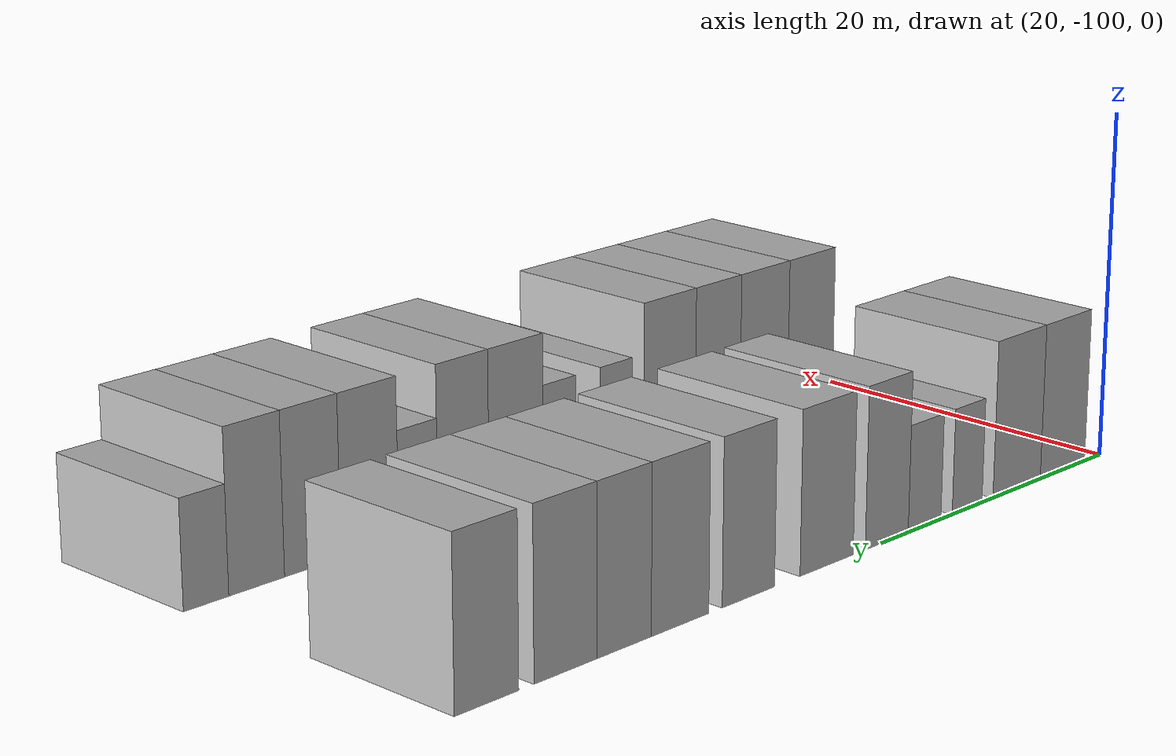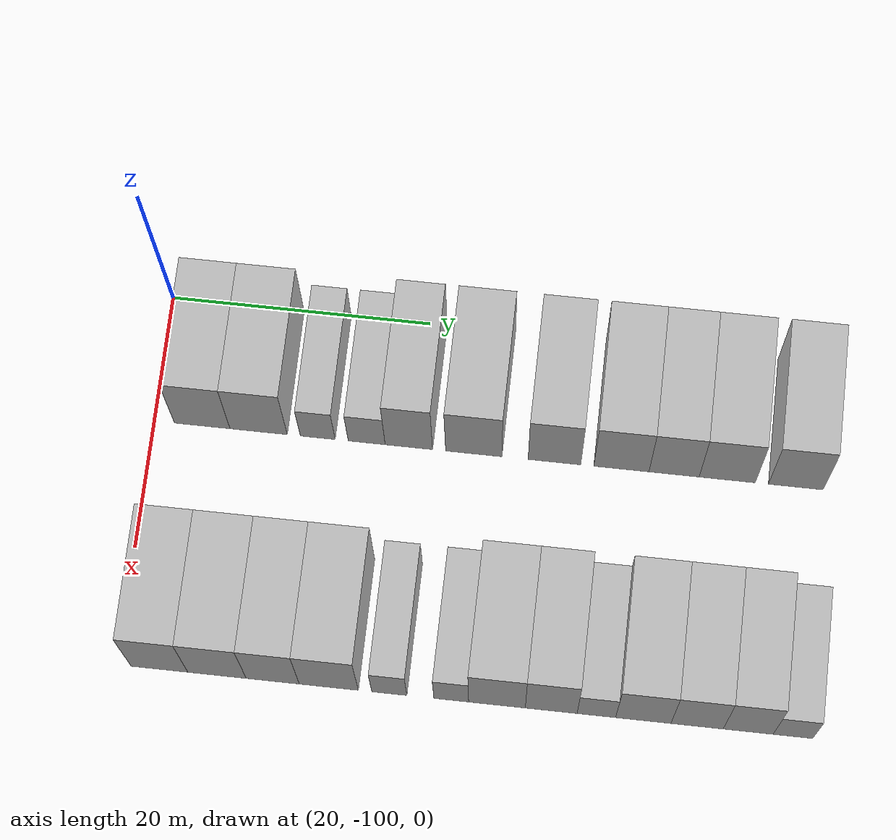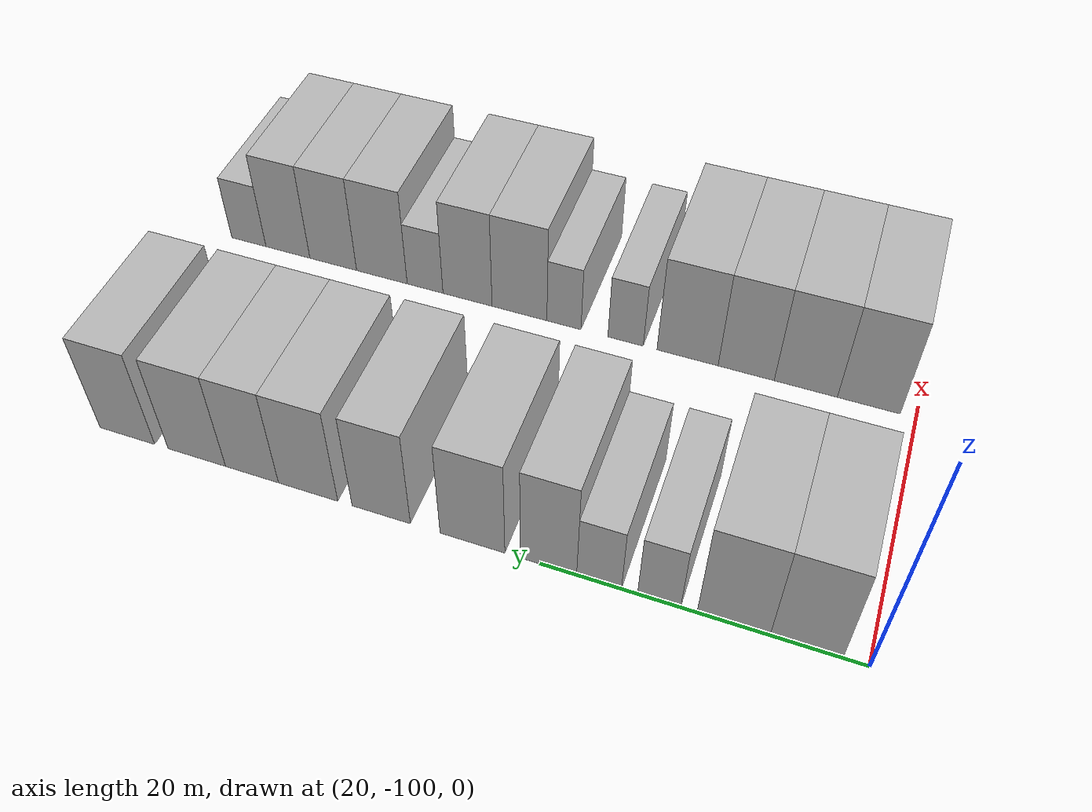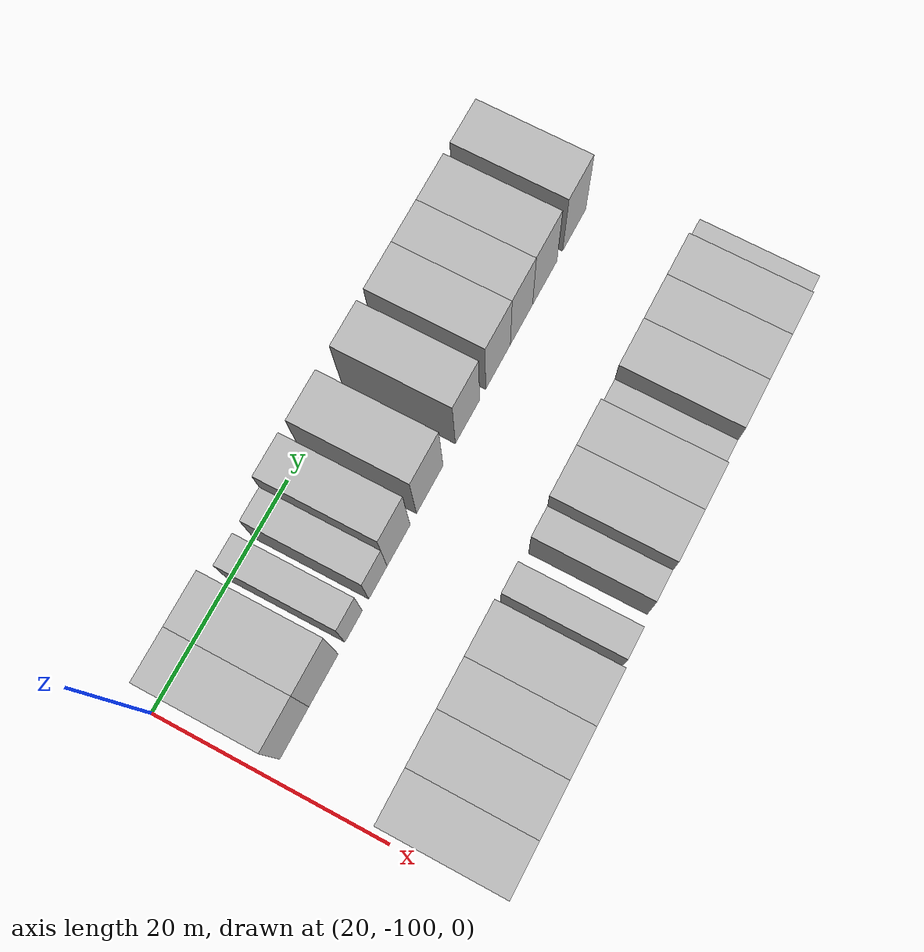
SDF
<sdf version="1.6">
 <world name="default">
  <model name="building_24">
   <static>1</static>
   <pose>25.0000 -96.3340 0 0.000000 0.000000 0.000000</pose>
   <link name="link">
    <pose>0 0 4.50 0 0 0</pose>
    <collision name="collision"><geometry><box><size>10.0000 4.2683 9.0000</size></box></geometry></collision>
    <visual name="visual">
     <cast_shadows>0</cast_shadows>
     <geometry><box><size>10.0000 4.2683 9.0000</size></box></geometry>
     <material>
      <script>
       <uri>model://HANNAS_wall/materials/scripts</uri>
       <uri>model://HANNAS_wall/materials/textures</uri>
       <name>vrc/HANNAS_wall</name>
      </script>
     </material>
    </visual>
   </link>
  </model>
  <model name="building_25">
   <static>1</static>
   <pose>25.0000 -92.0035 0 0.000000 0.000000 0.000000</pose>
   <link name="link">
    <pose>0 0 4.50 0 0 0</pose>
    <collision name="collision"><geometry><box><size>10.0000 4.3929 9.0000</size></box></geometry></collision>
    <visual name="visual">
     <cast_shadows>0</cast_shadows>
     <geometry><box><size>10.0000 4.3929 9.0000</size></box></geometry>
     <material>
      <script>
       <uri>model://HANNAS_wall/materials/scripts</uri>
       <uri>model://HANNAS_wall/materials/textures</uri>
       <name>vrc/HANNAS_wall</name>
      </script>
     </material>
    </visual>
   </link>
  </model>
  <model name="building_26">
   <static>1</static>
   <pose>25.0000 -87.4747 0 0.000000 0.000000 0.000000</pose>
   <link name="link">
    <pose>0 0 3.00 0 0 0</pose>
    <collision name="collision"><geometry><box><size>10.0000 2.6648 6.0000</size></box></geometry></collision>
    <visual name="visual">
     <cast_shadows>0</cast_shadows>
     <geometry><box><size>10.0000 2.6648 6.0000</size></box></geometry>
     <material>
      <script>
       <uri>model://HANNAS_wall/materials/scripts</uri>
       <uri>model://HANNAS_wall/materials/textures</uri>
       <name>vrc/HANNAS_wall</name>
      </script>
     </material>
    </visual>
   </link>
  </model>
  <model name="building_27">
   <static>1</static>
   <pose>25.0000 -83.7285 0 0.000000 0.000000 0.000000</pose>
   <link name="link">
    <pose>0 0 3.00 0 0 0</pose>
    <collision name="collision"><geometry><box><size>10.0000 2.8275 6.0000</size></box></geometry></collision>
    <visual name="visual">
     <cast_shadows>0</cast_shadows>
     <geometry><box><size>10.0000 2.8275 6.0000</size></box></geometry>
     <material>
      <script>
       <uri>model://HANNAS_wall/materials/scripts</uri>
       <uri>model://HANNAS_wall/materials/textures</uri>
       <name>vrc/HANNAS_wall</name>
      </script>
     </material>
    </visual>
   </link>
  </model>
  <model name="building_28">
   <static>1</static>
   <pose>25.0000 -80.5029 0 0.000000 0.000000 0.000000</pose>
   <link name="link">
    <pose>0 0 4.50 0 0 0</pose>
    <collision name="collision"><geometry><box><size>10.0000 3.6236 9.0000</size></box></geometry></collision>
    <visual name="visual">
     <cast_shadows>0</cast_shadows>
     <geometry><box><size>10.0000 3.6236 9.0000</size></box></geometry>
     <material>
      <script>
       <uri>model://HANNAS_wall/materials/scripts</uri>
       <uri>model://HANNAS_wall/materials/textures</uri>
       <name>vrc/HANNAS_wall</name>
      </script>
     </material>
    </visual>
   </link>
  </model>
  <model name="building_29">
   <static>1</static>
   <pose>25.0000 -75.5467 0 0.000000 0.000000 0.000000</pose>
   <link name="link">
    <pose>0 0 4.50 0 0 0</pose>
    <collision name="collision"><geometry><box><size>10.0000 4.2889 9.0000</size></box></geometry></collision>
    <visual name="visual">
     <cast_shadows>0</cast_shadows>
     <geometry><box><size>10.0000 4.2889 9.0000</size></box></geometry>
     <material>
      <script>
       <uri>model://HANNAS_wall/materials/scripts</uri>
       <uri>model://HANNAS_wall/materials/textures</uri>
       <name>vrc/HANNAS_wall</name>
      </script>
     </material>
    </visual>
   </link>
  </model>
  <model name="building_30">
   <static>1</static>
   <pose>25.0000 -69.4031 0 0.000000 0.000000 0.000000</pose>
   <link name="link">
    <pose>0 0 4.50 0 0 0</pose>
    <collision name="collision"><geometry><box><size>10.0000 3.9982 9.0000</size></box></geometry></collision>
    <visual name="visual">
     <cast_shadows>0</cast_shadows>
     <geometry><box><size>10.0000 3.9982 9.0000</size></box></geometry>
     <material>
      <script>
       <uri>model://HANNAS_wall/materials/scripts</uri>
       <uri>model://HANNAS_wall/materials/textures</uri>
       <name>vrc/HANNAS_wall</name>
      </script>
     </material>
    </visual>
   </link>
  </model>
  <model name="building_31">
   <static>1</static>
   <pose>25.0000 -64.3107 0 0.000000 0.000000 0.000000</pose>
   <link name="link">
    <pose>0 0 4.50 0 0 0</pose>
    <collision name="collision"><geometry><box><size>10.0000 4.1865 9.0000</size></box></geometry></collision>
    <visual name="visual">
     <cast_shadows>0</cast_shadows>
     <geometry><box><size>10.0000 4.1865 9.0000</size></box></geometry>
     <material>
      <script>
       <uri>model://HANNAS_wall/materials/scripts</uri>
       <uri>model://HANNAS_wall/materials/textures</uri>
       <name>vrc/HANNAS_wall</name>
      </script>
     </material>
    </visual>
   </link>
  </model>
  <model name="building_32">
   <static>1</static>
   <pose>25.0000 -60.3107 0 0.000000 0.000000 0.000000</pose>
   <link name="link">
    <pose>0 0 4.50 0 0 0</pose>
    <collision name="collision"><geometry><box><size>10.0000 3.8135 9.0000</size></box></geometry></collision>
    <visual name="visual">
     <cast_shadows>0</cast_shadows>
     <geometry><box><size>10.0000 3.8135 9.0000</size></box></geometry>
     <material>
      <script>
       <uri>model://HANNAS_wall/materials/scripts</uri>
       <uri>model://HANNAS_wall/materials/textures</uri>
       <name>vrc/HANNAS_wall</name>
      </script>
     </material>
    </visual>
   </link>
  </model>
  <model name="building_33">
   <static>1</static>
   <pose>25.0000 -56.2787 0 0.000000 0.000000 0.000000</pose>
   <link name="link">
    <pose>0 0 4.50 0 0 0</pose>
    <collision name="collision"><geometry><box><size>10.0000 4.2505 9.0000</size></box></geometry></collision>
    <visual name="visual">
     <cast_shadows>0</cast_shadows>
     <geometry><box><size>10.0000 4.2505 9.0000</size></box></geometry>
     <material>
      <script>
       <uri>model://HANNAS_wall/materials/scripts</uri>
       <uri>model://HANNAS_wall/materials/textures</uri>
       <name>vrc/HANNAS_wall</name>
      </script>
     </material>
    </visual>
   </link>
  </model>
  <model name="building_34">
   <static>1</static>
   <pose>25.0000 -51.0854 0 0.000000 0.000000 0.000000</pose>
   <link name="link">
    <pose>0 0 4.50 0 0 0</pose>
    <collision name="collision"><geometry><box><size>10.0000 4.1361 9.0000</size></box></geometry></collision>
    <visual name="visual">
     <cast_shadows>0</cast_shadows>
     <geometry><box><size>10.0000 4.1361 9.0000</size></box></geometry>
     <material>
      <script>
       <uri>model://HANNAS_wall/materials/scripts</uri>
       <uri>model://HANNAS_wall/materials/textures</uri>
       <name>vrc/HANNAS_wall</name>
      </script>
     </material>
    </visual>
   </link>
  </model>
  <model name="building_125">
   <static>1</static>
   <pose>44.0000 -96.8268 0 0.000000 0.000000 0.000000</pose>
   <link name="link">
    <pose>0 0 4.50 0 0 0</pose>
    <collision name="collision"><geometry><box><size>10.0000 4.2298 9.0000</size></box></geometry></collision>
    <visual name="visual">
     <cast_shadows>0</cast_shadows>
     <geometry><box><size>10.0000 4.2298 9.0000</size></box></geometry>
     <material>
      <script>
       <uri>model://HANNAS_wall/materials/scripts</uri>
       <uri>model://HANNAS_wall/materials/textures</uri>
       <name>vrc/HANNAS_wall</name>
      </script>
     </material>
    </visual>
   </link>
  </model>
  <model name="building_126">
   <static>1</static>
   <pose>44.0000 -92.5384 0 0.000000 0.000000 0.000000</pose>
   <link name="link">
    <pose>0 0 4.50 0 0 0</pose>
    <collision name="collision"><geometry><box><size>10.0000 4.3470 9.0000</size></box></geometry></collision>
    <visual name="visual">
     <cast_shadows>0</cast_shadows>
     <geometry><box><size>10.0000 4.3470 9.0000</size></box></geometry>
     <material>
      <script>
       <uri>model://HANNAS_wall/materials/scripts</uri>
       <uri>model://HANNAS_wall/materials/textures</uri>
       <name>vrc/HANNAS_wall</name>
      </script>
     </material>
    </visual>
   </link>
  </model>
  <model name="building_127">
   <static>1</static>
   <pose>44.0000 -88.3916 0 0.000000 0.000000 0.000000</pose>
   <link name="link">
    <pose>0 0 4.50 0 0 0</pose>
    <collision name="collision"><geometry><box><size>10.0000 3.9466 9.0000</size></box></geometry></collision>
    <visual name="visual">
     <cast_shadows>0</cast_shadows>
     <geometry><box><size>10.0000 3.9466 9.0000</size></box></geometry>
     <material>
      <script>
       <uri>model://HANNAS_wall/materials/scripts</uri>
       <uri>model://HANNAS_wall/materials/textures</uri>
       <name>vrc/HANNAS_wall</name>
      </script>
     </material>
    </visual>
   </link>
  </model>
  <model name="building_128">
   <static>1</static>
   <pose>44.0000 -84.2240 0 0.000000 0.000000 0.000000</pose>
   <link name="link">
    <pose>0 0 4.50 0 0 0</pose>
    <collision name="collision"><geometry><box><size>10.0000 4.3886 9.0000</size></box></geometry></collision>
    <visual name="visual">
     <cast_shadows>0</cast_shadows>
     <geometry><box><size>10.0000 4.3886 9.0000</size></box></geometry>
     <material>
      <script>
       <uri>model://HANNAS_wall/materials/scripts</uri>
       <uri>model://HANNAS_wall/materials/textures</uri>
       <name>vrc/HANNAS_wall</name>
      </script>
     </material>
    </visual>
   </link>
  </model>
  <model name="building_129">
   <static>1</static>
   <pose>44.0000 -79.7315 0 0.000000 0.000000 0.000000</pose>
   <link name="link">
    <pose>0 0 3.00 0 0 0</pose>
    <collision name="collision"><geometry><box><size>10.0000 2.5964 6.0000</size></box></geometry></collision>
    <visual name="visual">
     <cast_shadows>0</cast_shadows>
     <geometry><box><size>10.0000 2.5964 6.0000</size></box></geometry>
     <material>
      <script>
       <uri>model://HANNAS_wall/materials/scripts</uri>
       <uri>model://HANNAS_wall/materials/textures</uri>
       <name>vrc/HANNAS_wall</name>
      </script>
     </material>
    </visual>
   </link>
  </model>
  <model name="building_130">
   <static>1</static>
   <pose>44.0000 -75.1488 0 0.000000 0.000000 0.000000</pose>
   <link name="link">
    <pose>0 0 3.00 0 0 0</pose>
    <collision name="collision"><geometry><box><size>10.0000 2.5689 6.0000</size></box></geometry></collision>
    <visual name="visual">
     <cast_shadows>0</cast_shadows>
     <geometry><box><size>10.0000 2.5689 6.0000</size></box></geometry>
     <material>
      <script>
       <uri>model://HANNAS_wall/materials/scripts</uri>
       <uri>model://HANNAS_wall/materials/textures</uri>
       <name>vrc/HANNAS_wall</name>
      </script>
     </material>
    </visual>
   </link>
  </model>
  <model name="building_131">
   <static>1</static>
   <pose>44.0000 -71.7693 0 0.000000 0.000000 0.000000</pose>
   <link name="link">
    <pose>0 0 4.50 0 0 0</pose>
    <collision name="collision"><geometry><box><size>10.0000 4.1902 9.0000</size></box></geometry></collision>
    <visual name="visual">
     <cast_shadows>0</cast_shadows>
     <geometry><box><size>10.0000 4.1902 9.0000</size></box></geometry>
     <material>
      <script>
       <uri>model://HANNAS_wall/materials/scripts</uri>
       <uri>model://HANNAS_wall/materials/textures</uri>
       <name>vrc/HANNAS_wall</name>
      </script>
     </material>
    </visual>
   </link>
  </model>
  <model name="building_132">
   <static>1</static>
   <pose>44.0000 -67.7608 0 0.000000 0.000000 0.000000</pose>
   <link name="link">
    <pose>0 0 4.50 0 0 0</pose>
    <collision name="collision"><geometry><box><size>10.0000 3.8269 9.0000</size></box></geometry></collision>
    <visual name="visual">
     <cast_shadows>0</cast_shadows>
     <geometry><box><size>10.0000 3.8269 9.0000</size></box></geometry>
     <material>
      <script>
       <uri>model://HANNAS_wall/materials/scripts</uri>
       <uri>model://HANNAS_wall/materials/textures</uri>
       <name>vrc/HANNAS_wall</name>
      </script>
     </material>
    </visual>
   </link>
  </model>
  <model name="building_133">
   <static>1</static>
   <pose>44.0000 -64.4280 0 0.000000 0.000000 0.000000</pose>
   <link name="link">
    <pose>0 0 3.00 0 0 0</pose>
    <collision name="collision"><geometry><box><size>10.0000 2.8385 6.0000</size></box></geometry></collision>
    <visual name="visual">
     <cast_shadows>0</cast_shadows>
     <geometry><box><size>10.0000 2.8385 6.0000</size></box></geometry>
     <material>
      <script>
       <uri>model://HANNAS_wall/materials/scripts</uri>
       <uri>model://HANNAS_wall/materials/textures</uri>
       <name>vrc/HANNAS_wall</name>
      </script>
     </material>
    </visual>
   </link>
  </model>
  <model name="building_134">
   <static>1</static>
   <pose>44.0000 -60.9694 0 0.000000 0.000000 0.000000</pose>
   <link name="link">
    <pose>0 0 4.50 0 0 0</pose>
    <collision name="collision"><geometry><box><size>10.0000 4.0788 9.0000</size></box></geometry></collision>
    <visual name="visual">
     <cast_shadows>0</cast_shadows>
     <geometry><box><size>10.0000 4.0788 9.0000</size></box></geometry>
     <material>
      <script>
       <uri>model://HANNAS_wall/materials/scripts</uri>
       <uri>model://HANNAS_wall/materials/textures</uri>
       <name>vrc/HANNAS_wall</name>
      </script>
     </material>
    </visual>
   </link>
  </model>
  <model name="building_135">
   <static>1</static>
   <pose>44.0000 -57.0082 0 0.000000 0.000000 0.000000</pose>
   <link name="link">
    <pose>0 0 4.50 0 0 0</pose>
    <collision name="collision"><geometry><box><size>10.0000 3.8436 9.0000</size></box></geometry></collision>
    <visual name="visual">
     <cast_shadows>0</cast_shadows>
     <geometry><box><size>10.0000 3.8436 9.0000</size></box></geometry>
     <material>
      <script>
       <uri>model://HANNAS_wall/materials/scripts</uri>
       <uri>model://HANNAS_wall/materials/textures</uri>
       <name>vrc/HANNAS_wall</name>
      </script>
     </material>
    </visual>
   </link>
  </model>
  <model name="building_136">
   <static>1</static>
   <pose>44.0000 -53.2494 0 0.000000 0.000000 0.000000</pose>
   <link name="link">
    <pose>0 0 4.50 0 0 0</pose>
    <collision name="collision"><geometry><box><size>10.0000 3.6739 9.0000</size></box></geometry></collision>
    <visual name="visual">
     <cast_shadows>0</cast_shadows>
     <geometry><box><size>10.0000 3.6739 9.0000</size></box></geometry>
     <material>
      <script>
       <uri>model://HANNAS_wall/materials/scripts</uri>
       <uri>model://HANNAS_wall/materials/textures</uri>
       <name>vrc/HANNAS_wall</name>
      </script>
     </material>
    </visual>
   </link>
  </model>
  <model name="building_137">
   <static>1</static>
   <pose>44.0000 -49.9611 0 0.000000 0.000000 0.000000</pose>
   <link name="link">
    <pose>0 0 3.00 0 0 0</pose>
    <collision name="collision"><geometry><box><size>10.0000 2.9028 6.0000</size></box></geometry></collision>
    <visual name="visual">
     <cast_shadows>0</cast_shadows>
     <geometry><box><size>10.0000 2.9028 6.0000</size></box></geometry>
     <material>
      <script>
       <uri>model://HANNAS_wall/materials/scripts</uri>
       <uri>model://HANNAS_wall/materials/textures</uri>
       <name>vrc/HANNAS_wall</name>
      </script>
     </material>
    </visual>
   </link>
  </model>
 </world>
</sdf>
